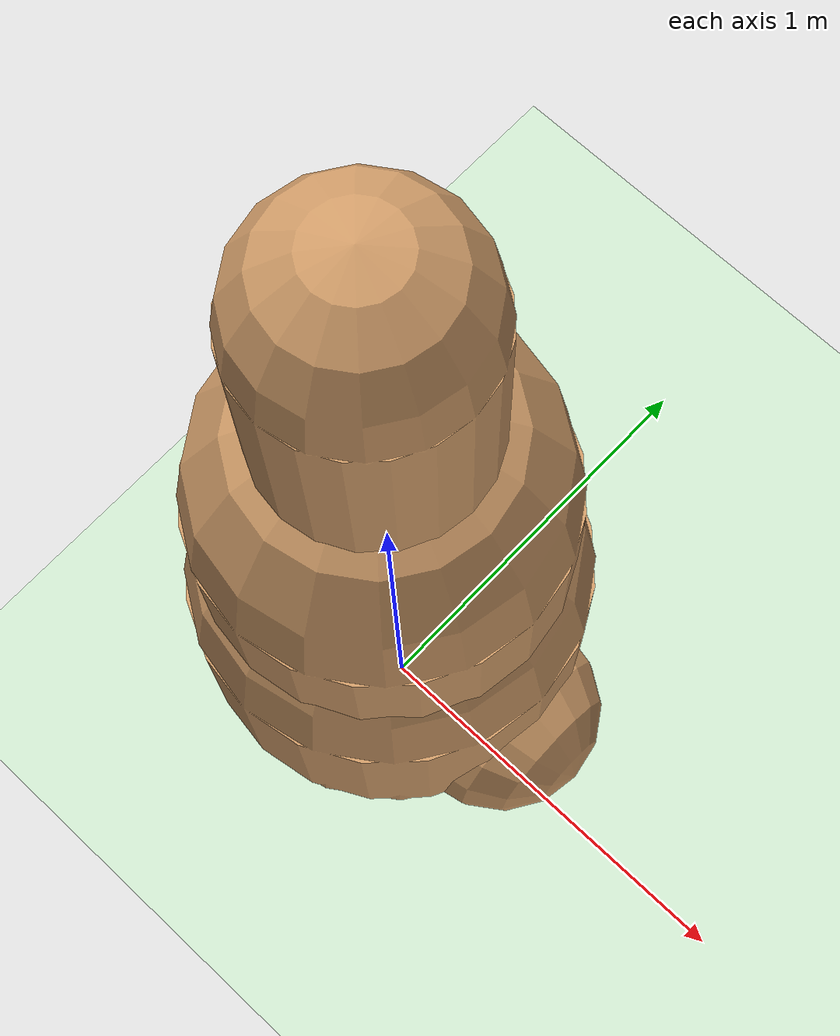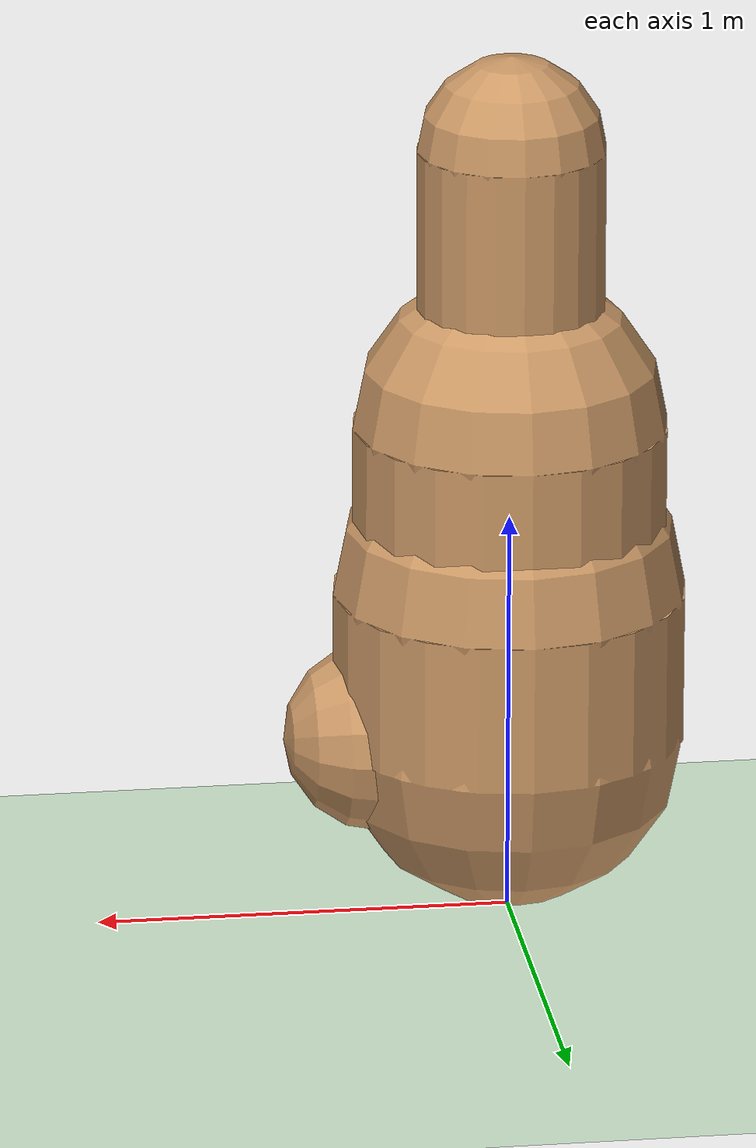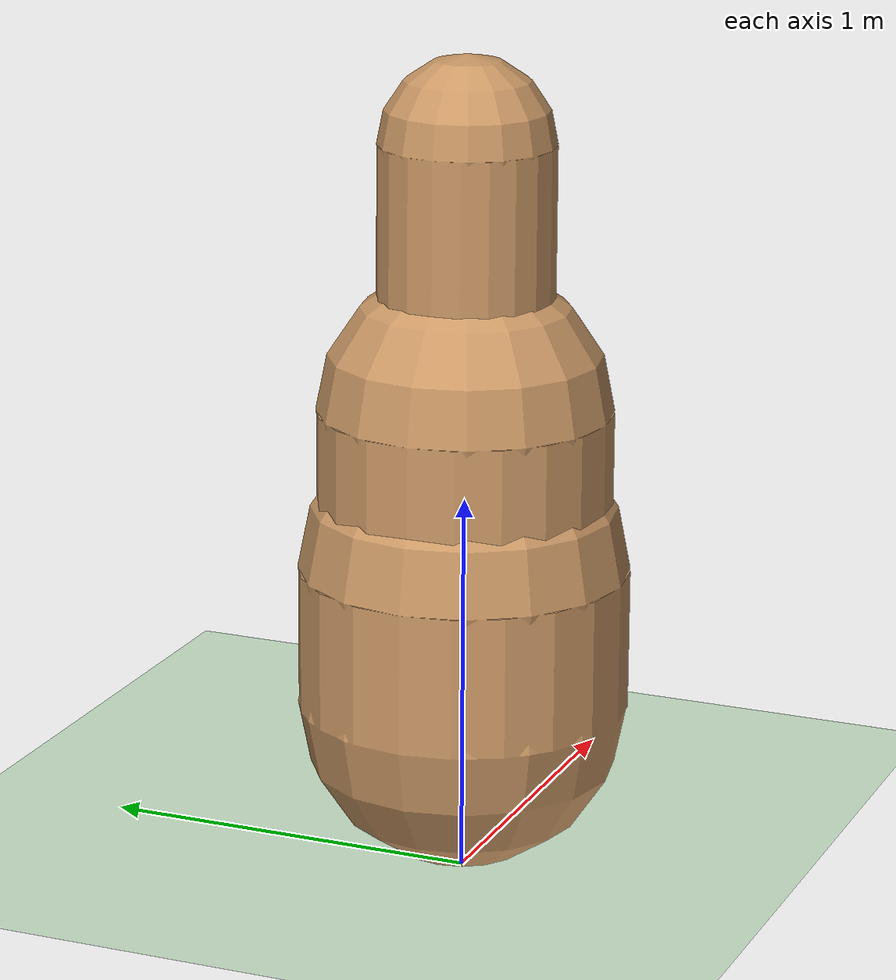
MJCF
<mujoco model="walker2d">
    <compiler angle="degree" coordinate="global" inertiafromgeom="true"/>
    <default>
      <joint armature="0.01" damping=".1" limited="true"/>
      <geom conaffinity="0" condim="3" contype="1" density="1000" friction=".7 .1 .1" rgba="0.8 0.6 .4 1"/>
    </default>
    <option integrator="RK4" timestep="0.002"/>

    <worldbody>
      <light cutoff="100" diffuse="1 1 1" dir="-0 0 -1.3" directional="true" exponent="1" pos="0 0 1.3" specular=".1 .1 .1"/>
      <geom conaffinity="1" condim="3" name="floor" pos="0 0 0" rgba="0.8 0.9 0.8 1" size="20 20 .125" type="plane" material="MatPlane"/>

      <body name="torso">
        <camera name="track" mode="trackcom" pos="0 -3 -0.25" xyaxes="1 0 0 0 0 1"/>
        <joint armature="0" axis="1 0 0" damping="0" limited="false" name="ignore1" pos="0 0 0" stiffness="0" type="slide"/>
        <joint armature="0" axis="0 0 1" damping="0" limited="false" name="ignore2" pos="0 0 0" ref="1.25" stiffness="0" type="slide"/>
        <joint armature="0" axis="0 1 0" damping="0" limited="false" name="ignore3" pos="0 0 0" stiffness="0" type="hinge"/>
        <geom fromto="0 0 1.9256959080696106 0 0 1.2394922947883606" name="torso_geom" size="0.22644114792346953" type="capsule" friction="0.9"/>
        <body name="thigh">
          <joint axis="0 -1 0" name="thigh_joint" pos="0 0 1.2394922947883606" range="-150 0" type="hinge"/>
          <geom fromto="0 0 1.2394922947883606 0 0 0.8205165028572082" name="thigh_geom" size="0.3793691575527191" type="capsule" friction="0.9"/>
          <body name="leg">
            <joint axis="0 -1 0" name="leg_joint" pos="0 0 0.8205165028572082" range="-150 0" type="hinge"/>
            <geom fromto="0 0 0.8205165028572082 0 0 0.45372129082679746" name="leg_geom" size="0.426750727891922" type="capsule" friction="0.9"/>
            <body name="foot">
              <joint axis="0 -1 0" name="foot_joint" pos="0 0 0.45372129082679746" range="-45 45" type="hinge"/>
              <geom fromto="0.014741892814636226 0 0.45372129082679746 0.3171356639266014 0 0.45372129082679746" name="foot_geom" size="0.23045219242572784" type="capsule" friction="1.9"/>
            </body>
          </body>
        </body>
        <body name="thigh_left">
          <joint axis="0 -1 0" name="thigh_left_joint" pos="0 0 1.2394922947883606" range="-150 0" type="hinge"/>
          <geom fromto="0 0 1.2394922947883606 0 0 0.8205165028572082" name="thigh_left_geom" size="0.3793691575527191" type="capsule" friction="0.9"/>
          <body name="leg_left">
            <joint axis="0 -1 0" name="leg_left_joint" pos="0 0 0.8205165028572082" range="-150 0" type="hinge"/>
            <geom fromto="0 0 0.8205165028572082 0 0 0.45372129082679746" name="leg_left_geom" size="0.426750727891922" type="capsule" friction="0.9"/>
            <body name="foot_left">
              <joint axis="0 -1 0" name="foot_left_joint" pos="0 0 0.45372129082679746" range="-45 45" type="hinge"/>
              <geom fromto="0.014741892814636226 0 0.45372129082679746 0.3171356639266014 0 0.45372129082679746" name="foot_left_geom" size="0.23045219242572784" type="capsule" friction="1.9"/>
            </body>
          </body>
        </body>
      </body>
    </worldbody>

    <actuator>
      <motor ctrllimited="true" ctrlrange="-1.0 1.0" gear="100" joint="thigh_joint"/>
      <motor ctrllimited="true" ctrlrange="-1.0 1.0" gear="100" joint="leg_joint"/>
      <motor ctrllimited="true" ctrlrange="-1.0 1.0" gear="100" joint="foot_joint"/>
      <motor ctrllimited="true" ctrlrange="-1.0 1.0" gear="100" joint="thigh_left_joint"/>
      <motor ctrllimited="true" ctrlrange="-1.0 1.0" gear="100" joint="leg_left_joint"/>
      <motor ctrllimited="true" ctrlrange="-1.0 1.0" gear="100" joint="foot_left_joint"/>
    </actuator>
      <asset>
        <texture type="skybox" builtin="gradient" rgb1=".4 .5 .6" rgb2="0 0 0"
            width="100" height="100"/>
        <texture builtin="flat" height="1278" mark="cross" markrgb="1 1 1" name="texgeom" random="0.01" rgb1="0.8 0.6 0.4" rgb2="0.8 0.6 0.4" type="cube" width="127"/>
        <texture builtin="checker" height="100" name="texplane" rgb1="0 0 0" rgb2="0.8 0.8 0.8" type="2d" width="100"/>
        <material name="MatPlane" reflectance="0.5" shininess="1" specular="1" texrepeat="60 60" texture="texplane"/>
        <material name="geom" texture="texgeom" texuniform="true"/>
      </asset>
  </mujoco>
